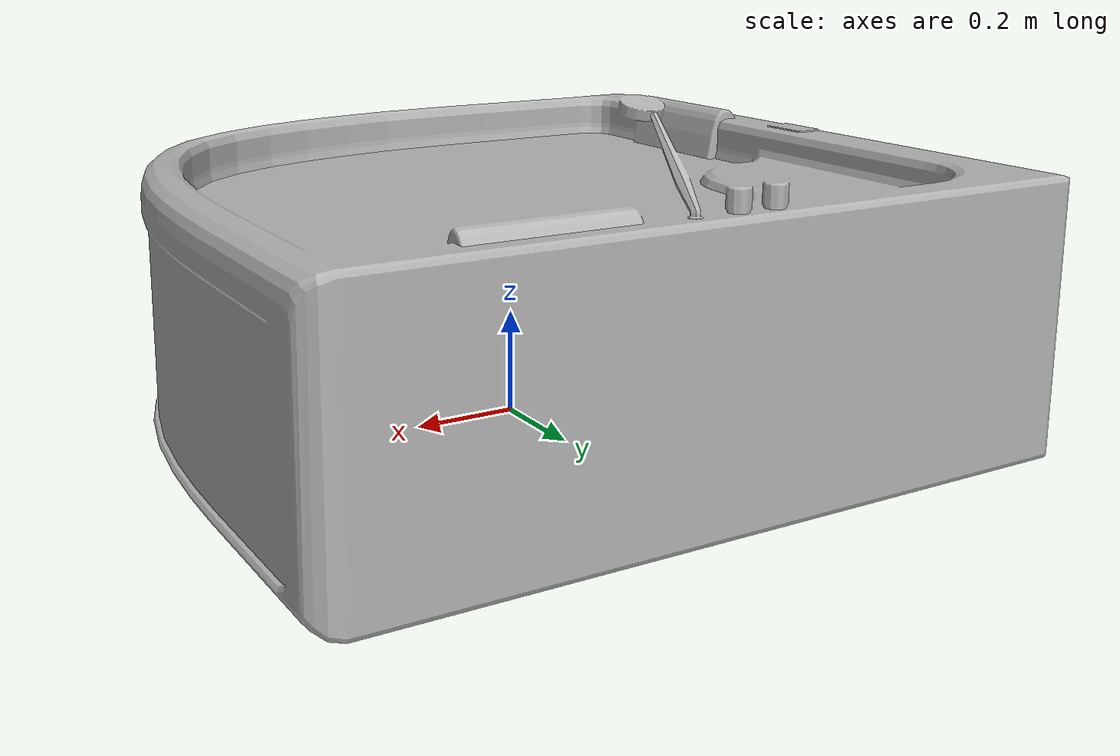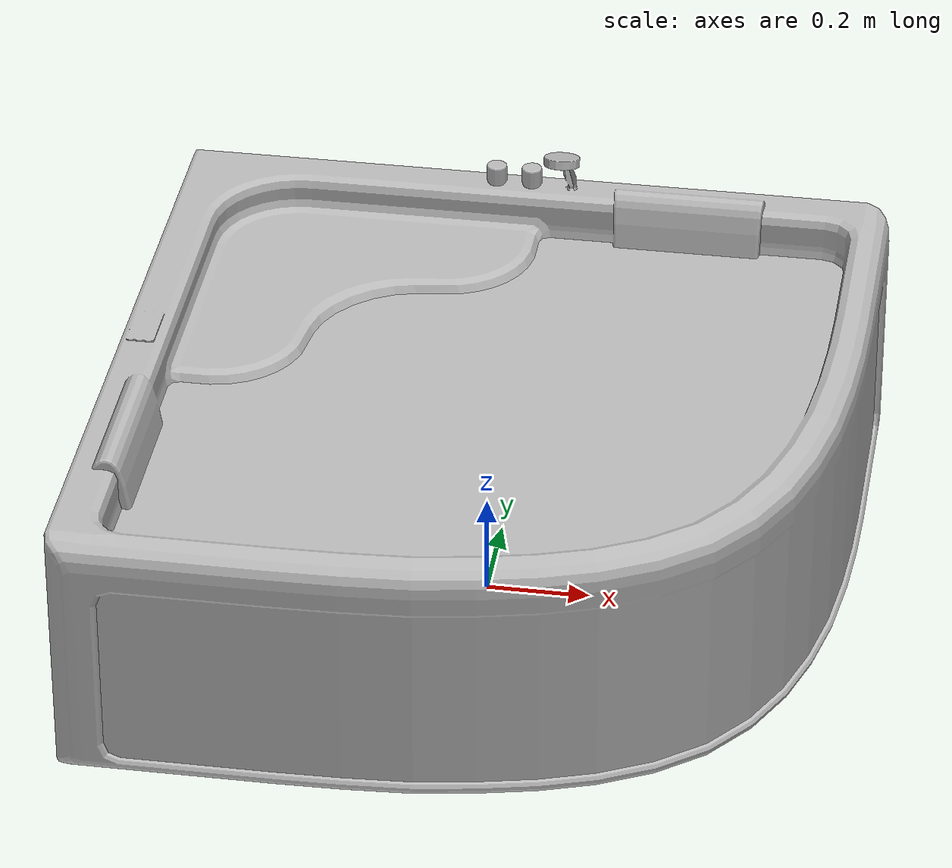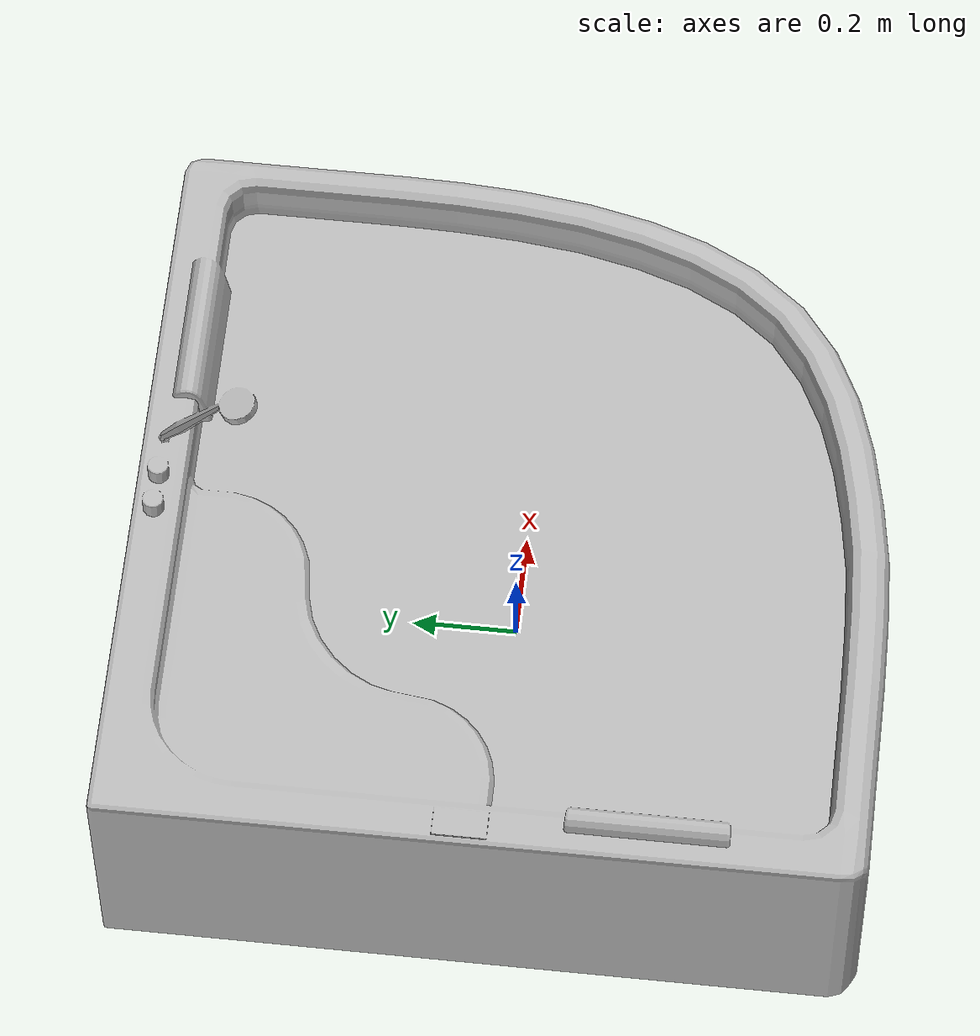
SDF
<?xml version='1.0'?>
<sdf version='1.4'>
  <model name='82'>
    <pose>0 0 0 0 0 0</pose>
    <static>true</static>
    <link name='link'>
      <collision name='collision'>
        <pose>0 0 0 0 0 0</pose>
        <geometry>
          <box>
            <size>1.40016 1.40013 2</size>
          </box>
        </geometry>
      </collision>
      <visual name='visual'>
        <pose>0 0 0 0 0 0</pose>
        <geometry>
          <mesh><uri>model://82/82.dae</uri></mesh>
        </geometry>
      </visual>
    </link>
  </model>
</sdf>
